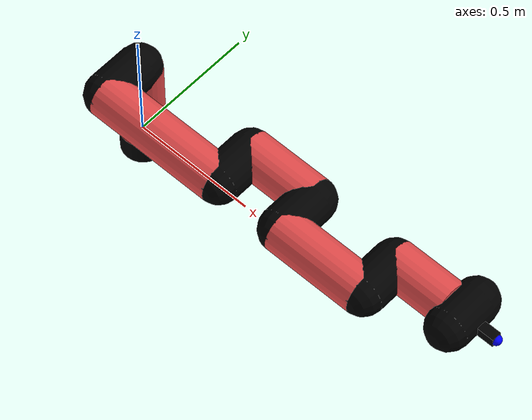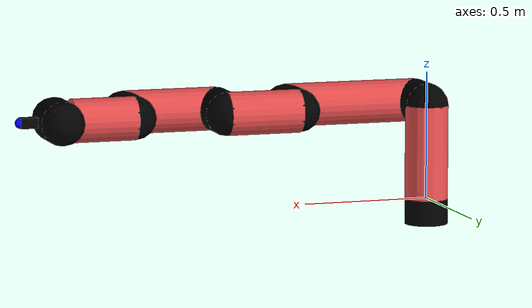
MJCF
<mujoco model="manipulator">
		<compiler angle="degree" coordinate="local" inertiafromgeom="auto" meshdir="meshes/"/>
		<option gravity="0 0 0" integrator="RK4" iterations="30" timestep="0.01"/>

		<default>
		<joint armature="1" limited="true" stiffness="10" damping="15" frictionloss="5.0"/>
		<geom conaffinity="1" condim="3" contype="1" friction=".5 .1 .1" margin="0.002"/>
		<motor ctrllimited="true"/>
		<position ctrllimited="true"/>
		</default>

		<asset>
		<texture builtin="gradient" height="100" rgb1="1.0 1.0 1.0" rgb2="1.0 1.0 1.0" type="skybox" width="100"/>
		<texture builtin="flat" height="32" name="arm_tex" rgb1="0.9 0.3 0.3" type="2d" width="32"/>
		<texture builtin="flat" height="32" name="gripper_tex" rgb1="0.0 0.0 0.0" type="cube" width="32"/>

		<material name="arm_mat" shininess="0.1" specular="0.1" texture="arm_tex"/>
		<material name="gripper_mat" shininess="1" specular="1" texture="gripper_tex"/>
		</asset>

		<worldbody>
		<light cutoff="45" diffuse=".8 .8 .8" dir="0 0.16 -1" directional="false" name="light" pos="0 -2.0 8.0" specular="0.3 0.3 0.3"/>

		<body name="base_link" pos="0 0 -0.1">
		<geom fromto="0 0 0 0 0 0.1" material="arm_mat" name="base_link" rgba="0.0 0.0 0.0 1" size="0.085" type="cylinder"/>
		</body>

		<body name="l1" pos="0 0 0">
<geom fromto="0 0 0 0 0 0.37" material="arm_mat" name="l1" rgba="0.9 0.3 0.3 1" size="0.085" type="cylinder"/>
<geom fromto="0 0 0.37 0 -0.16 0.37" material="arm_mat" name="l1_ex" rgba="0.0 0.0 0.0 1" size="0.085" type="capsule"/>
<joint axis="0 0 1" name="j1" pos="0 0 0" range="-90 90" damping="27.45" frictionloss="8.4"/>

<body name="l2" pos="0 -0.16 0.37">
<geom fromto="0 0 0 0.53 0 0" material="arm_mat" name="l2" rgba="0.9 0.3 0.3 1" size="0.085" type="cylinder"/>
<geom fromto="0.53 0 0 0.53 0.16 0" material="arm_mat" name="l2_ex" rgba="0.0 0.0 0.0 1" size="0.085" type="capsule"/>
<joint axis="0.0 1.0 0.0" name="j2" pos="0 0 0" range="-90 60" damping="27.12" frictionloss="10.27"/>

<body name="l3" pos="0.53 0.16 0">
<geom fromto="0 0 0 0.29 0 0" material="arm_mat" name="l3" rgba="0.9 0.3 0.3 1" size="0.085" type="cylinder"/>
<geom fromto="0.29 0 0 0.29 -0.16 0" material="arm_mat" name="l3_ex" rgba="0.0 0.0 0.0 1" size="0.085" type="capsule"/>
<joint axis="0.0 1.0 0.0" name="j3" pos="0 0 0" range="-30 60" damping="30.78" frictionloss="8.35"/>

<body name="l4" pos="0.29 -0.16 0">
<geom fromto="0 0 0 0.37 0 0" material="arm_mat" name="l4" rgba="0.9 0.3 0.3 1" size="0.085" type="cylinder"/>
<geom fromto="0.37 0 0 0.37 0.16 0" material="arm_mat" name="l4_ex" rgba="0.0 0.0 0.0 1" size="0.085" type="capsule"/>
<joint axis="0.0 1.0 0.0" name="j4" pos="0 0 0" range="-30 60" damping="31.38" frictionloss="11.44"/>

<body name="l5" pos="0.37 0.16 0">
<geom fromto="0 0 0 0.25 0 0" material="arm_mat" name="l5" rgba="0.9 0.3 0.3 1" size="0.085" type="cylinder"/>
<joint axis="0.0 1.0 0.0" name="j5" pos="0 0 0" range="-30 60" damping="22.6" frictionloss="12.41"/>

<body name="gripper" pos="0.25 0 0">
<geom fromto="0.05 -0.07 0 0.05 0.07 0" material="gripper_mat" name="gripper" rgba="0.0 0.0 0.0 1" size="0.085" type="capsule"/><joint axis="1 0 0" name="j6" pos="0 0 0" range="-90 90" damping="15" frictionloss="5.0"/><body name="finger" pos="0.1 0 0">
<geom fromto="0 0.0 0 0.1 0.0 0" material="gripper_mat" name="finger" rgba="0.0 0.0 0.0 1" size="0.020 0.06 0.06" type="box"/>
</body>
<site name="current" pos="0.2 0. 0.0" rgba="0. 0. 1.0 1" size="0.02" type="sphere"/>
</body>
</body>
</body>
</body>
</body>
</body>
</worldbody>
<actuator>
<motor ctrllimited="true" ctrlrange="-1.0 1.0" joint="j1" gear="96.47"/>
<motor ctrllimited="true" ctrlrange="-1.0 1.0" joint="j2" gear="77.1"/>
<motor ctrllimited="true" ctrlrange="-1.0 1.0" joint="j3" gear="84.62"/>
<motor ctrllimited="true" ctrlrange="-1.0 1.0" joint="j4" gear="71.3"/>
<motor ctrllimited="true" ctrlrange="-1.0 1.0" joint="j5" gear="64.76"/>
<motor ctrllimited="true" ctrlrange="-1.0 1.0" joint="j6" gear="80"/>
</actuator>
</mujoco>
